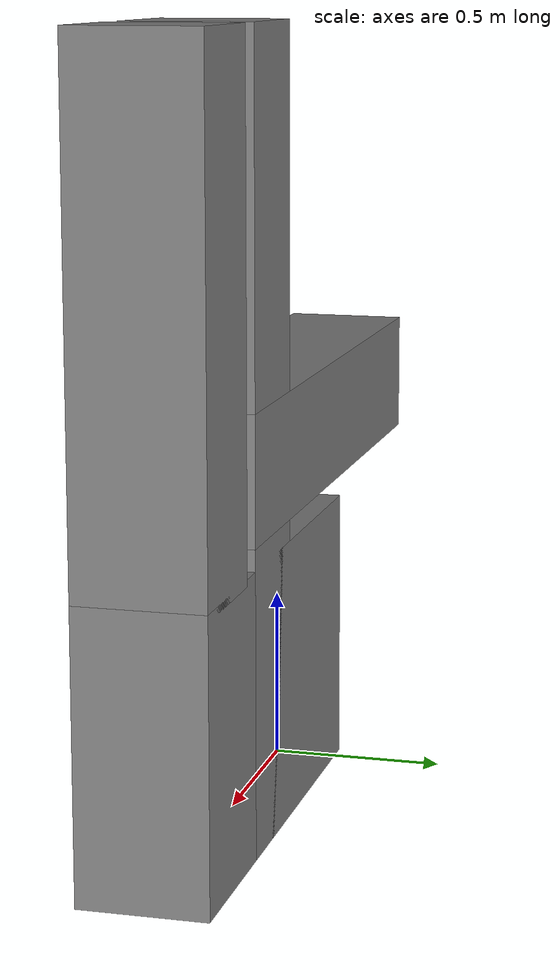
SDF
<?xml version="1.0" ?>
<sdf version="1.6">
  <model name="robotics_testlab_B/tubing">
    <link name="1">
      <collision name="1">
        <geometry>
          <box>
            <size>1.8 0.36 0.36</size>
          </box>
        </geometry>
        <name>1</name>
      </collision>
      <visual name="1">
        <geometry>
          <box>
            <size>1.8 0.36 0.36</size>
          </box>
        </geometry>
        <material>
          <ambient>0.5 0.5 0.5 1</ambient>
        </material>
        <name>1</name>
      </visual>
      <pose>0.0 0.0 1.04 0 0 0</pose>
      <name>1</name>
    </link>
    <link name="2">
      <collision name="2">
        <geometry>
          <box>
            <size>0.36 0.36 1.0</size>
          </box>
        </geometry>
        <name>2</name>
      </collision>
      <visual name="2">
        <geometry>
          <box>
            <size>0.36 0.36 1.0</size>
          </box>
        </geometry>
        <material>
          <ambient>0.5 0.5 0.5 1</ambient>
        </material>
        <name>2</name>
      </visual>
      <pose>0.72 0.0 1.72 0 0 0</pose>
      <name>2</name>
    </link>
    <link name="3">
      <collision name="3">
        <geometry>
          <box>
            <size>0.36 0.36 1.44</size>
          </box>
        </geometry>
        <name>3</name>
      </collision>
      <visual name="3">
        <geometry>
          <box>
            <size>0.36 0.36 1.44</size>
          </box>
        </geometry>
        <material>
          <ambient>0.5 0.5 0.5 1</ambient>
        </material>
        <name>3</name>
      </visual>
      <pose>1.16 0.0 1.5 0 0 0</pose>
      <name>3</name>
    </link>
    <link name="4">
      <collision name="4">
        <geometry>
          <box>
            <size>1.4 0.36 0.8</size>
          </box>
        </geometry>
        <name>4</name>
      </collision>
      <visual name="4">
        <geometry>
          <box>
            <size>1.4 0.36 0.8</size>
          </box>
        </geometry>
        <material>
          <ambient>0.5 0.5 0.5 1</ambient>
        </material>
        <name>4</name>
      </visual>
      <pose>0.64 0.0 0.4 0 0 0</pose>
      <name>4</name>
    </link>
    <link name="5">
      <collision name="5">
        <geometry>
          <box>
            <size>0.36 0.36 1.0</size>
          </box>
        </geometry>
        <name>5</name>
      </collision>
      <visual name="5">
        <geometry>
          <box>
            <size>0.36 0.36 1.0</size>
          </box>
        </geometry>
        <material>
          <ambient>0.5 0.5 0.5 1</ambient>
        </material>
        <name>5</name>
      </visual>
      <pose>0.72 0.0 0.5 0 0 0</pose>
      <name>5</name>
    </link>
    <link name="in_front_of">
      <virtual_volume name="in_front_of">
        <geometry>
          <box>
            <size>1.2 0.6 1</size>
          </box>
        </geometry>
        <pose>0.6 0.0 0.5 0 0 0</pose>
        <name>in_front_of</name>
      </virtual_volume>
      <name>in_front_of</name>
    </link>
    <static>true</static>
    <name>robotics_testlab_B/tubing</name>
  </model>
</sdf>
